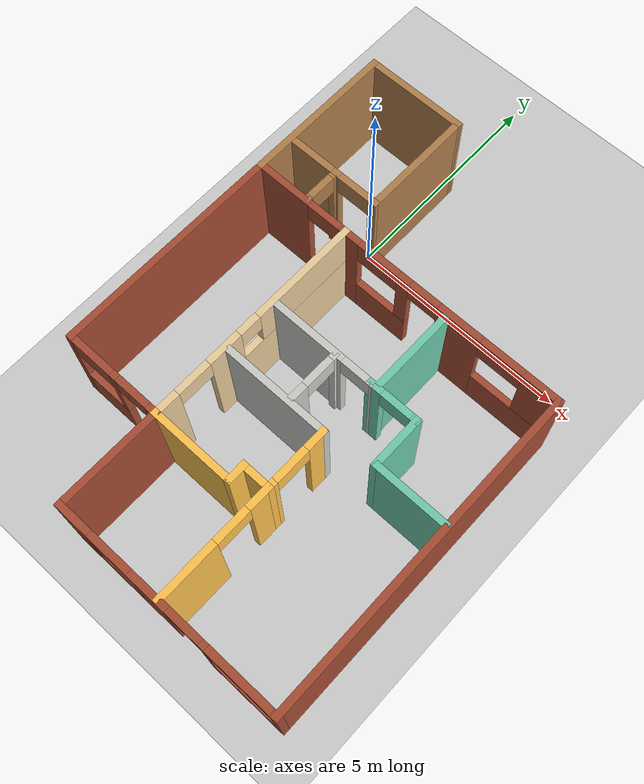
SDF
<sdf version="1.7">
 <world name="default">
  <model name="ground_plane">
   <static>1</static>
   <link name="link">
    <collision name="collision">
     <geometry><plane><normal>0 0 1</normal><size>100 100</size></plane></geometry>
     <surface>
      <contact><collide_bitmask>65535</collide_bitmask></contact>
      <friction><ode><mu>100</mu><mu2>50</mu2></ode></friction>
     </surface>
    </collision>
    <visual name="visual">
     <cast_shadows>0</cast_shadows>
     <geometry><plane><normal>0 0 1</normal><size>100 100</size></plane></geometry>
     <material>
      <script><uri>file://media/materials/scripts/gazebo.material</uri><name>Gazebo/Grey</name></script>
     </material>
    </visual>
   </link>
  </model>
  <model name="Building">
   <pose>1.6411 -2.93 0 0 -0 0</pose>
   <link name="Wall_101">
    <collision name="Wall_101_Collision">
     <geometry><box><size>3.5 0.15 2.5</size></box></geometry>
     <pose>0 0 1.25 0 -0 0</pose>
    </collision>
    <visual name="Wall_101_Visual">
     <pose>0 0 1.25 0 -0 0</pose>
     <geometry><box><size>3.5 0.15 2.5</size></box></geometry>
     <material>
      <script><uri>file://media/materials/scripts/gazebo.material</uri><name>Gazebo/Wood</name></script>
      <ambient>1 1 1 1</ambient>
     </material>
     <meta><layer>0</layer></meta>
    </visual>
    <pose>-3.72481 3.67494 0 0 -0 1.5708</pose>
   </link>
   <link name="Wall_107">
    <collision name="Wall_107_Collision">
     <geometry><box><size>2.39871 0.15 2.5</size></box></geometry>
     <pose>0 0 1.25 0 -0 0</pose>
    </collision>
    <visual name="Wall_107_Visual">
     <pose>0 0 1.25 0 -0 0</pose>
     <geometry><box><size>2.39871 0.15 2.5</size></box></geometry>
     <material>
      <script><uri>file://media/materials/scripts/gazebo.material</uri><name>Gazebo/Wood</name></script>
      <ambient>1 1 1 1</ambient>
     </material>
     <meta><layer>0</layer></meta>
    </visual>
    <pose>-2.60045 5.34997 0 0 -0 2.5e-05</pose>
   </link>
   <link name="Wall_109">
    <pose>-2.5181 2.433 0 0 -0 1.5708</pose>
    <visual name="Wall_109_Visual_0">
     <pose>-0.406862 0 1.25 0 -0 0</pose>
     <geometry><box><size>0.186276 0.15 2.5</size></box></geometry>
     <material>
      <script><uri>file://media/materials/scripts/gazebo.material</uri><name>Gazebo/Wood</name></script>
      <ambient>1 1 1 1</ambient>
     </material>
     <meta><layer>0</layer></meta>
    </visual>
    <collision name="Wall_109_Collision_0">
     <geometry><box><size>0.186276 0.15 2.5</size></box></geometry>
     <pose>-0.406862 0 1.25 0 -0 0</pose>
    </collision>
    <visual name="Wall_109_Visual_1">
     <pose>0.393138 0 1.25 0 -0 0</pose>
     <geometry><box><size>0.213724 0.15 2.5</size></box></geometry>
     <material>
      <script><uri>file://media/materials/scripts/gazebo.material</uri><name>Gazebo/Wood</name></script>
      <ambient>1 1 1 1</ambient>
     </material>
     <meta><layer>0</layer></meta>
    </visual>
    <collision name="Wall_109_Collision_1">
     <geometry><box><size>0.213724 0.15 2.5</size></box></geometry>
     <pose>0.393138 0 1.25 0 -0 0</pose>
    </collision>
    <visual name="Wall_109_Visual_2">
     <pose>-0.013724 0 2.25 0 -0 0</pose>
     <geometry><box><size>0.6 0.15 0.5</size></box></geometry>
     <material>
      <script><uri>file://media/materials/scripts/gazebo.material</uri><name>Gazebo/Wood</name></script>
      <ambient>1 1 1 1</ambient>
     </material>
     <meta><layer>0</layer></meta>
    </visual>
    <collision name="Wall_109_Collision_2">
     <geometry><box><size>0.6 0.15 0.5</size></box></geometry>
     <pose>-0.013724 0 2.25 0 -0 0</pose>
    </collision>
   </link>
   <link name="Wall_111">
    <collision name="Wall_111_Collision">
     <geometry><box><size>1.2505 0.15 2.5</size></box></geometry>
     <pose>0 0 1.25 0 -0 0</pose>
    </collision>
    <visual name="Wall_111_Visual">
     <pose>0 0 1.25 0 -0 0</pose>
     <geometry><box><size>1.2505 0.15 2.5</size></box></geometry>
     <material>
      <script><uri>file://media/materials/scripts/gazebo.material</uri><name>Gazebo/Wood</name></script>
      <ambient>1 1 1 1</ambient>
     </material>
     <meta><layer>0</layer></meta>
    </visual>
    <pose>-3.06835 2.85789 0 0 0 -3.14139</pose>
   </link>
   <link name="Wall_113">
    <pose>-1.9981 2.858 0 0 -0 0</pose>
    <visual name="Wall_113_Visual_0">
     <pose>-0.4985 0 1.25 0 -0 0</pose>
     <geometry><box><size>0.193 0.15 2.5</size></box></geometry>
     <material>
      <script><uri>file://media/materials/scripts/gazebo.material</uri><name>Gazebo/Wood</name></script>
      <ambient>1 1 1 1</ambient>
     </material>
     <meta><layer>0</layer></meta>
    </visual>
    <collision name="Wall_113_Collision_0">
     <geometry><box><size>0.193 0.15 2.5</size></box></geometry>
     <pose>-0.4985 0 1.25 0 -0 0</pose>
    </collision>
    <visual name="Wall_113_Visual_1">
     <pose>0.4965 0 1.25 0 -0 0</pose>
     <geometry><box><size>0.197 0.15 2.5</size></box></geometry>
     <material>
      <script><uri>file://media/materials/scripts/gazebo.material</uri><name>Gazebo/Wood</name></script>
      <ambient>1 1 1 1</ambient>
     </material>
     <meta><layer>0</layer></meta>
    </visual>
    <collision name="Wall_113_Collision_1">
     <geometry><box><size>0.197 0.15 2.5</size></box></geometry>
     <pose>0.4965 0 1.25 0 -0 0</pose>
    </collision>
    <visual name="Wall_113_Visual_2">
     <pose>-0.002 0 2.25 0 -0 0</pose>
     <geometry><box><size>0.8 0.15 0.5</size></box></geometry>
     <material>
      <script><uri>file://media/materials/scripts/gazebo.material</uri><name>Gazebo/Wood</name></script>
      <ambient>1 1 1 1</ambient>
     </material>
     <meta><layer>0</layer></meta>
    </visual>
    <collision name="Wall_113_Collision_2">
     <geometry><box><size>0.8 0.15 0.5</size></box></geometry>
     <pose>-0.002 0 2.25 0 -0 0</pose>
    </collision>
   </link>
   <link name="Wall_115">
    <collision name="Wall_115_Collision">
     <geometry><box><size>2.642 0.15 2.5</size></box></geometry>
     <pose>0 0 1.25 0 -0 0</pose>
    </collision>
    <visual name="Wall_115_Visual">
     <pose>0 0 1.25 0 -0 0</pose>
     <geometry><box><size>2.642 0.15 2.5</size></box></geometry>
     <material>
      <script><uri>file://media/materials/scripts/gazebo.material</uri><name>Gazebo/Wood</name></script>
      <ambient>1 1 1 1</ambient>
     </material>
     <meta><layer>0</layer></meta>
    </visual>
    <pose>-1.4771 4.104 0 0 -0 1.56999</pose>
   </link>
   <link name="Wall_25">
    <collision name="Wall_25_Collision">
     <geometry><box><size>5.2 0.15 2.5</size></box></geometry>
     <pose>0 0 1.25 0 -0 0</pose>
    </collision>
    <visual name="Wall_25_Visual">
     <pose>0 0 1.25 0 -0 0</pose>
     <geometry><box><size>5.2 0.15 2.5</size></box></geometry>
     <material>
      <script><uri>file://media/materials/scripts/gazebo.material</uri><name>Gazebo/Bricks</name></script>
      <ambient>1 1 1 1</ambient>
     </material>
     <meta><layer>0</layer></meta>
    </visual>
    <pose>-3.72495 -0.52503 0 0 0 -1.57085</pose>
   </link>
   <link name="Wall_27">
    <pose>-2.6006 -3.05 0 0 -0 0</pose>
    <visual name="Wall_27_Visual_0">
     <pose>-1.11544 0 1.25 0 -0 0</pose>
     <geometry><box><size>0.168303 0.15 2.5</size></box></geometry>
     <material>
      <script><uri>file://media/materials/scripts/gazebo.material</uri><name>Gazebo/Bricks</name></script>
      <ambient>0.760784 0.662745 0.627451 1</ambient>
     </material>
     <meta><layer>0</layer></meta>
    </visual>
    <collision name="Wall_27_Collision_0">
     <geometry><box><size>0.168303 0.15 2.5</size></box></geometry>
     <pose>-1.11544 0 1.25 0 -0 0</pose>
    </collision>
    <visual name="Wall_27_Visual_1">
     <pose>1.05915 0 1.25 0 -0 0</pose>
     <geometry><box><size>0.28088 0.15 2.5</size></box></geometry>
     <material>
      <script><uri>file://media/materials/scripts/gazebo.material</uri><name>Gazebo/Bricks</name></script>
      <ambient>0.760784 0.662745 0.627451 1</ambient>
     </material>
     <meta><layer>0</layer></meta>
    </visual>
    <collision name="Wall_27_Collision_1">
     <geometry><box><size>0.28088 0.15 2.5</size></box></geometry>
     <pose>1.05915 0 1.25 0 -0 0</pose>
    </collision>
    <visual name="Wall_27_Visual_2">
     <pose>-0.456289 0 0.45 0 -0 0</pose>
     <geometry><box><size>1.15 0.15 0.9</size></box></geometry>
     <material>
      <script><uri>file://media/materials/scripts/gazebo.material</uri><name>Gazebo/Bricks</name></script>
      <ambient>0.760784 0.662745 0.627451 1</ambient>
     </material>
     <meta><layer>0</layer></meta>
    </visual>
    <collision name="Wall_27_Collision_2">
     <geometry><box><size>1.15 0.15 0.9</size></box></geometry>
     <pose>-0.456289 0 0.45 0 -0 0</pose>
    </collision>
    <visual name="Wall_27_Visual_3">
     <pose>0.043711 0 1.7 0 -0 0</pose>
     <geometry><box><size>0.15 0.15 1.6</size></box></geometry>
     <material>
      <script><uri>file://media/materials/scripts/gazebo.material</uri><name>Gazebo/Bricks</name></script>
      <ambient>0.760784 0.662745 0.627451 1</ambient>
     </material>
     <meta><layer>0</layer></meta>
    </visual>
    <collision name="Wall_27_Collision_3">
     <geometry><box><size>0.15 0.15 1.6</size></box></geometry>
     <pose>0.043711 0 1.7 0 -0 0</pose>
    </collision>
    <visual name="Wall_27_Visual_4">
     <pose>-0.531289 0 2.2 0 -0 0</pose>
     <geometry><box><size>1 0.15 0.6</size></box></geometry>
     <material>
      <script><uri>file://media/materials/scripts/gazebo.material</uri><name>Gazebo/Bricks</name></script>
      <ambient>0.760784 0.662745 0.627451 1</ambient>
     </material>
     <meta><layer>0</layer></meta>
    </visual>
    <collision name="Wall_27_Collision_4">
     <geometry><box><size>1 0.15 0.6</size></box></geometry>
     <pose>-0.531289 0 2.2 0 -0 0</pose>
    </collision>
    <visual name="Wall_27_Visual_5">
     <pose>0.518711 0 2.25 0 -0 0</pose>
     <geometry><box><size>0.8 0.15 0.5</size></box></geometry>
     <material>
      <script><uri>file://media/materials/scripts/gazebo.material</uri><name>Gazebo/Bricks</name></script>
      <ambient>0.760784 0.662745 0.627451 1</ambient>
     </material>
     <meta><layer>0</layer></meta>
    </visual>
    <collision name="Wall_27_Collision_5">
     <geometry><box><size>0.8 0.15 0.5</size></box></geometry>
     <pose>0.518711 0 2.25 0 -0 0</pose>
    </collision>
   </link>
   <link name="Wall_29">
    <collision name="Wall_29_Collision">
     <geometry><box><size>2.30006 0.15 2.5</size></box></geometry>
     <pose>0 0 1.25 0 -0 0</pose>
    </collision>
    <visual name="Wall_29_Visual">
     <pose>0 0 1.25 0 -0 0</pose>
     <geometry><box><size>2.30006 0.15 2.5</size></box></geometry>
     <material>
      <script><uri>file://media/materials/scripts/gazebo.material</uri><name>Gazebo/Bricks</name></script>
      <ambient>1 1 1 1</ambient>
     </material>
     <meta><layer>0</layer></meta>
    </visual>
    <pose>-1.4761 -4.125 0 0 0 -1.5708</pose>
   </link>
   <link name="Wall_32">
    <collision name="Wall_32_Collision">
     <geometry><box><size>7.5 0.15 2.5</size></box></geometry>
     <pose>0 0 1.25 0 -0 0</pose>
    </collision>
    <visual name="Wall_32_Visual">
     <pose>0 0 1.25 0 -0 0</pose>
     <geometry><box><size>7.5 0.15 2.5</size></box></geometry>
     <material>
      <script><uri>file://media/materials/scripts/gazebo.material</uri><name>Gazebo/Bricks</name></script>
      <ambient>1 1 1 1</ambient>
     </material>
     <meta><layer>0</layer></meta>
    </visual>
    <pose>3.72519 -1.67506 0 0 0 -1.5708</pose>
   </link>
   <link name="Wall_34">
    <pose>1.12519 -5.35006 0 0 -0 3.14159</pose>
    <visual name="Wall_34_Visual_0">
     <pose>-2.58626 0 1.25 0 -0 0</pose>
     <geometry><box><size>0.177479 0.15 2.5</size></box></geometry>
     <material>
      <script><uri>file://media/materials/scripts/gazebo.material</uri><name>Gazebo/Bricks</name></script>
      <ambient>1 1 1 1</ambient>
     </material>
     <meta><layer>0</layer></meta>
    </visual>
    <collision name="Wall_34_Collision_0">
     <geometry><box><size>0.177479 0.15 2.5</size></box></geometry>
     <pose>-2.58626 0 1.25 0 -0 0</pose>
    </collision>
    <visual name="Wall_34_Visual_1">
     <pose>0.393157 0 1.25 0 -0 0</pose>
     <geometry><box><size>0.919189 0.15 2.5</size></box></geometry>
     <material>
      <script><uri>file://media/materials/scripts/gazebo.material</uri><name>Gazebo/Bricks</name></script>
      <ambient>1 1 1 1</ambient>
     </material>
     <meta><layer>0</layer></meta>
    </visual>
    <collision name="Wall_34_Collision_1">
     <geometry><box><size>0.919189 0.15 2.5</size></box></geometry>
     <pose>0.393157 0 1.25 0 -0 0</pose>
    </collision>
    <visual name="Wall_34_Visual_2">
     <pose>-1.68198 0 0.25 0 -0 0</pose>
     <geometry><box><size>1.63108 0.15 0.5</size></box></geometry>
     <material>
      <script><uri>file://media/materials/scripts/gazebo.material</uri><name>Gazebo/Bricks</name></script>
      <ambient>1 1 1 1</ambient>
     </material>
     <meta><layer>0</layer></meta>
    </visual>
    <collision name="Wall_34_Collision_2">
     <geometry><box><size>1.63108 0.15 0.5</size></box></geometry>
     <pose>-1.68198 0 0.25 0 -0 0</pose>
    </collision>
    <visual name="Wall_34_Visual_3">
     <pose>1.76388 0 0.45 0 -0 0</pose>
     <geometry><box><size>1.82225 0.15 0.9</size></box></geometry>
     <material>
      <script><uri>file://media/materials/scripts/gazebo.material</uri><name>Gazebo/Bricks</name></script>
      <ambient>1 1 1 1</ambient>
     </material>
     <meta><layer>0</layer></meta>
    </visual>
    <collision name="Wall_34_Collision_3">
     <geometry><box><size>1.82225 0.15 0.9</size></box></geometry>
     <pose>1.76388 0 0.45 0 -0 0</pose>
    </collision>
    <visual name="Wall_34_Visual_4">
     <pose>-0.931979 0 1.5 0 -0 0</pose>
     <geometry><box><size>0.131083 0.15 2</size></box></geometry>
     <material>
      <script><uri>file://media/materials/scripts/gazebo.material</uri><name>Gazebo/Bricks</name></script>
      <ambient>1 1 1 1</ambient>
     </material>
     <meta><layer>0</layer></meta>
    </visual>
    <collision name="Wall_34_Collision_4">
     <geometry><box><size>0.131083 0.15 2</size></box></geometry>
     <pose>-0.931979 0 1.5 0 -0 0</pose>
    </collision>
    <visual name="Wall_34_Visual_5">
     <pose>2.26388 0 1.7 0 -0 0</pose>
     <geometry><box><size>0.822249 0.15 1.6</size></box></geometry>
     <material>
      <script><uri>file://media/materials/scripts/gazebo.material</uri><name>Gazebo/Bricks</name></script>
      <ambient>1 1 1 1</ambient>
     </material>
     <meta><layer>0</layer></meta>
    </visual>
    <collision name="Wall_34_Collision_5">
     <geometry><box><size>0.822249 0.15 1.6</size></box></geometry>
     <pose>2.26388 0 1.7 0 -0 0</pose>
    </collision>
    <visual name="Wall_34_Visual_6">
     <pose>1.35275 0 2.2 0 -0 0</pose>
     <geometry><box><size>1 0.15 0.6</size></box></geometry>
     <material>
      <script><uri>file://media/materials/scripts/gazebo.material</uri><name>Gazebo/Bricks</name></script>
      <ambient>1 1 1 1</ambient>
     </material>
     <meta><layer>0</layer></meta>
    </visual>
    <collision name="Wall_34_Collision_6">
     <geometry><box><size>1 0.15 0.6</size></box></geometry>
     <pose>1.35275 0 2.2 0 -0 0</pose>
    </collision>
    <visual name="Wall_34_Visual_7">
     <pose>-1.74752 0 2.25 0 -0 0</pose>
     <geometry><box><size>1.5 0.15 0.5</size></box></geometry>
     <material>
      <script><uri>file://media/materials/scripts/gazebo.material</uri><name>Gazebo/Bricks</name></script>
      <ambient>1 1 1 1</ambient>
     </material>
     <meta><layer>0</layer></meta>
    </visual>
    <collision name="Wall_34_Collision_7">
     <geometry><box><size>1.5 0.15 0.5</size></box></geometry>
     <pose>-1.74752 0 2.25 0 -0 0</pose>
    </collision>
    <visual name="Wall_34_Visual_8">
     <pose>-0.466438 0 2.25 0 -0 0</pose>
     <geometry><box><size>0.8 0.15 0.5</size></box></geometry>
     <material>
      <script><uri>file://media/materials/scripts/gazebo.material</uri><name>Gazebo/Bricks</name></script>
      <ambient>1 1 1 1</ambient>
     </material>
     <meta><layer>0</layer></meta>
    </visual>
    <collision name="Wall_34_Collision_8">
     <geometry><box><size>0.8 0.15 0.5</size></box></geometry>
     <pose>-0.466438 0 2.25 0 -0 0</pose>
    </collision>
   </link>
   <link name="Wall_39">
    <pose>-1.4761 -0.525002 0 0 -0 1.5708</pose>
    <visual name="Wall_39_Visual_0">
     <pose>-2.29749 0 1.25 0 -0 0</pose>
     <geometry><box><size>0.604971 0.15 2.5</size></box></geometry>
     <material>
      <script><uri>file://media/materials/scripts/gazebo.material</uri><name>Gazebo/Grey</name></script>
      <ambient>0.921569 0.807843 0.615686 1</ambient>
     </material>
     <meta><layer>0</layer></meta>
    </visual>
    <collision name="Wall_39_Collision_0">
     <geometry><box><size>0.604971 0.15 2.5</size></box></geometry>
     <pose>-2.29749 0 1.25 0 -0 0</pose>
    </collision>
    <visual name="Wall_39_Visual_1">
     <pose>-0.798602 0 1.25 0 -0 0</pose>
     <geometry><box><size>0.792797 0.15 2.5</size></box></geometry>
     <material>
      <script><uri>file://media/materials/scripts/gazebo.material</uri><name>Gazebo/Grey</name></script>
      <ambient>0.921569 0.807843 0.615686 1</ambient>
     </material>
     <meta><layer>0</layer></meta>
    </visual>
    <collision name="Wall_39_Collision_1">
     <geometry><box><size>0.792797 0.15 2.5</size></box></geometry>
     <pose>-0.798602 0 1.25 0 -0 0</pose>
    </collision>
    <visual name="Wall_39_Visual_2">
     <pose>1.09888 0 0.75 0 -0 0</pose>
     <geometry><box><size>3.00217 0.15 1.5</size></box></geometry>
     <material>
      <script><uri>file://media/materials/scripts/gazebo.material</uri><name>Gazebo/Grey</name></script>
      <ambient>0.921569 0.807843 0.615686 1</ambient>
     </material>
     <meta><layer>0</layer></meta>
    </visual>
    <collision name="Wall_39_Collision_2">
     <geometry><box><size>3.00217 0.15 1.5</size></box></geometry>
     <pose>1.09888 0 0.75 0 -0 0</pose>
    </collision>
    <visual name="Wall_39_Visual_3">
     <pose>1.34888 0 2 0 -0 0</pose>
     <geometry><box><size>2.50217 0.15 1</size></box></geometry>
     <material>
      <script><uri>file://media/materials/scripts/gazebo.material</uri><name>Gazebo/Grey</name></script>
      <ambient>0.921569 0.807843 0.615686 1</ambient>
     </material>
     <meta><layer>0</layer></meta>
    </visual>
    <collision name="Wall_39_Collision_3">
     <geometry><box><size>2.50217 0.15 1</size></box></geometry>
     <pose>1.34888 0 2 0 -0 0</pose>
    </collision>
    <visual name="Wall_39_Visual_4">
     <pose>-1.595 0 2.25 0 -0 0</pose>
     <geometry><box><size>0.8 0.15 0.5</size></box></geometry>
     <material>
      <script><uri>file://media/materials/scripts/gazebo.material</uri><name>Gazebo/Grey</name></script>
      <ambient>0.921569 0.807843 0.615686 1</ambient>
     </material>
     <meta><layer>0</layer></meta>
    </visual>
    <collision name="Wall_39_Collision_4">
     <geometry><box><size>0.8 0.15 0.5</size></box></geometry>
     <pose>-1.595 0 2.25 0 -0 0</pose>
    </collision>
    <visual name="Wall_39_Visual_5">
     <pose>-0.152203 0 2.25 0 -0 0</pose>
     <geometry><box><size>0.5 0.15 0.5</size></box></geometry>
     <material>
      <script><uri>file://media/materials/scripts/gazebo.material</uri><name>Gazebo/Grey</name></script>
      <ambient>0.921569 0.807843 0.615686 1</ambient>
     </material>
     <meta><layer>0</layer></meta>
    </visual>
    <collision name="Wall_39_Collision_5">
     <geometry><box><size>0.5 0.15 0.5</size></box></geometry>
     <pose>-0.152203 0 2.25 0 -0 0</pose>
    </collision>
   </link>
   <link name="Wall_4">
    <pose>0.000193 1.99994 0 0 -0 0</pose>
    <visual name="Wall_4_Visual_0">
     <pose>-3.10005 0 1.25 0 -0 0</pose>
     <geometry><box><size>1.39989 0.15 2.5</size></box></geometry>
     <material>
      <script><uri>file://media/materials/scripts/gazebo.material</uri><name>Gazebo/Bricks</name></script>
      <ambient>1 1 1 1</ambient>
     </material>
     <meta><layer>0</layer></meta>
    </visual>
    <collision name="Wall_4_Collision_0">
     <geometry><box><size>1.39989 0.15 2.5</size></box></geometry>
     <pose>-3.10005 0 1.25 0 -0 0</pose>
    </collision>
    <visual name="Wall_4_Visual_1">
     <pose>-1.34947 0 1.25 0 -0 0</pose>
     <geometry><box><size>0.501265 0.15 2.5</size></box></geometry>
     <material>
      <script><uri>file://media/materials/scripts/gazebo.material</uri><name>Gazebo/Bricks</name></script>
      <ambient>1 1 1 1</ambient>
     </material>
     <meta><layer>0</layer></meta>
    </visual>
    <collision name="Wall_4_Collision_1">
     <geometry><box><size>0.501265 0.15 2.5</size></box></geometry>
     <pose>-1.34947 0 1.25 0 -0 0</pose>
    </collision>
    <visual name="Wall_4_Visual_2">
     <pose>1.40766 0 1.25 0 -0 0</pose>
     <geometry><box><size>1.036 0.15 2.5</size></box></geometry>
     <material>
      <script><uri>file://media/materials/scripts/gazebo.material</uri><name>Gazebo/Bricks</name></script>
      <ambient>1 1 1 1</ambient>
     </material>
     <meta><layer>0</layer></meta>
    </visual>
    <collision name="Wall_4_Collision_2">
     <geometry><box><size>1.036 0.15 2.5</size></box></geometry>
     <pose>1.40766 0 1.25 0 -0 0</pose>
    </collision>
    <visual name="Wall_4_Visual_3">
     <pose>-0.454591 0 0.45 0 -0 0</pose>
     <geometry><box><size>1.2885 0.15 0.9</size></box></geometry>
     <material>
      <script><uri>file://media/materials/scripts/gazebo.material</uri><name>Gazebo/Bricks</name></script>
      <ambient>1 1 1 1</ambient>
     </material>
     <meta><layer>0</layer></meta>
    </visual>
    <collision name="Wall_4_Collision_3">
     <geometry><box><size>1.2885 0.15 0.9</size></box></geometry>
     <pose>-0.454591 0 0.45 0 -0 0</pose>
    </collision>
    <visual name="Wall_4_Visual_4">
     <pose>2.86283 0 0.45 0 -0 0</pose>
     <geometry><box><size>1.87434 0.15 0.9</size></box></geometry>
     <material>
      <script><uri>file://media/materials/scripts/gazebo.material</uri><name>Gazebo/Bricks</name></script>
      <ambient>1 1 1 1</ambient>
     </material>
     <meta><layer>0</layer></meta>
    </visual>
    <collision name="Wall_4_Collision_4">
     <geometry><box><size>1.87434 0.15 0.9</size></box></geometry>
     <pose>2.86283 0 0.45 0 -0 0</pose>
    </collision>
    <visual name="Wall_4_Visual_5">
     <pose>0.045409 0 1.7 0 -0 0</pose>
     <geometry><box><size>0.2885 0.15 1.6</size></box></geometry>
     <material>
      <script><uri>file://media/materials/scripts/gazebo.material</uri><name>Gazebo/Bricks</name></script>
      <ambient>1 1 1 1</ambient>
     </material>
     <meta><layer>0</layer></meta>
    </visual>
    <collision name="Wall_4_Collision_5">
     <geometry><box><size>0.2885 0.15 1.6</size></box></geometry>
     <pose>0.045409 0 1.7 0 -0 0</pose>
    </collision>
    <visual name="Wall_4_Visual_6">
     <pose>0.045409 0 1.7 0 -0 0</pose>
     <geometry><box><size>0.2885 0.15 1.6</size></box></geometry>
     <material>
      <script><uri>file://media/materials/scripts/gazebo.material</uri><name>Gazebo/Bricks</name></script>
      <ambient>1 1 1 1</ambient>
     </material>
     <meta><layer>0</layer></meta>
    </visual>
    <collision name="Wall_4_Collision_6">
     <geometry><box><size>0.2885 0.15 1.6</size></box></geometry>
     <pose>0.045409 0 1.7 0 -0 0</pose>
    </collision>
    <visual name="Wall_4_Visual_7">
     <pose>3.36283 0 1.7 0 -0 0</pose>
     <geometry><box><size>0.874341 0.15 1.6</size></box></geometry>
     <material>
      <script><uri>file://media/materials/scripts/gazebo.material</uri><name>Gazebo/Bricks</name></script>
      <ambient>1 1 1 1</ambient>
     </material>
     <meta><layer>0</layer></meta>
    </visual>
    <collision name="Wall_4_Collision_7">
     <geometry><box><size>0.874341 0.15 1.6</size></box></geometry>
     <pose>3.36283 0 1.7 0 -0 0</pose>
    </collision>
    <visual name="Wall_4_Visual_8">
     <pose>-0.598841 0 2.2 0 -0 0</pose>
     <geometry><box><size>1 0.15 0.6</size></box></geometry>
     <material>
      <script><uri>file://media/materials/scripts/gazebo.material</uri><name>Gazebo/Bricks</name></script>
      <ambient>1 1 1 1</ambient>
     </material>
     <meta><layer>0</layer></meta>
    </visual>
    <collision name="Wall_4_Collision_8">
     <geometry><box><size>1 0.15 0.6</size></box></geometry>
     <pose>-0.598841 0 2.2 0 -0 0</pose>
    </collision>
    <visual name="Wall_4_Visual_9">
     <pose>2.42566 0 2.2 0 -0 0</pose>
     <geometry><box><size>1 0.15 0.6</size></box></geometry>
     <material>
      <script><uri>file://media/materials/scripts/gazebo.material</uri><name>Gazebo/Bricks</name></script>
      <ambient>1 1 1 1</ambient>
     </material>
     <meta><layer>0</layer></meta>
    </visual>
    <collision name="Wall_4_Collision_9">
     <geometry><box><size>1 0.15 0.6</size></box></geometry>
     <pose>2.42566 0 2.2 0 -0 0</pose>
    </collision>
    <visual name="Wall_4_Visual_10">
     <pose>-2.00011 0 2.25 0 -0 0</pose>
     <geometry><box><size>0.8 0.15 0.5</size></box></geometry>
     <material>
      <script><uri>file://media/materials/scripts/gazebo.material</uri><name>Gazebo/Bricks</name></script>
      <ambient>1 1 1 1</ambient>
     </material>
     <meta><layer>0</layer></meta>
    </visual>
    <collision name="Wall_4_Collision_10">
     <geometry><box><size>0.8 0.15 0.5</size></box></geometry>
     <pose>-2.00011 0 2.25 0 -0 0</pose>
    </collision>
    <visual name="Wall_4_Visual_11">
     <pose>0.539659 0 2.25 0 -0 0</pose>
     <geometry><box><size>0.7 0.15 0.5</size></box></geometry>
     <material>
      <script><uri>file://media/materials/scripts/gazebo.material</uri><name>Gazebo/Bricks</name></script>
      <ambient>1 1 1 1</ambient>
     </material>
     <meta><layer>0</layer></meta>
    </visual>
    <collision name="Wall_4_Collision_11">
     <geometry><box><size>0.7 0.15 0.5</size></box></geometry>
     <pose>0.539659 0 2.25 0 -0 0</pose>
    </collision>
    <visual name="Wall_4_Visual_12">
     <pose>0.539659 0 2.25 0 -0 0</pose>
     <geometry><box><size>0.7 0.15 0.5</size></box></geometry>
     <material>
      <script><uri>file://media/materials/scripts/gazebo.material</uri><name>Gazebo/Bricks</name></script>
      <ambient>1 1 1 1</ambient>
     </material>
     <meta><layer>0</layer></meta>
    </visual>
    <collision name="Wall_4_Collision_12">
     <geometry><box><size>0.7 0.15 0.5</size></box></geometry>
     <pose>0.539659 0 2.25 0 -0 0</pose>
    </collision>
   </link>
   <link name="Wall_41">
    <collision name="Wall_41_Collision">
     <geometry><box><size>2.00086 0.15 2.5</size></box></geometry>
     <pose>0 0 1.25 0 -0 0</pose>
    </collision>
    <visual name="Wall_41_Visual">
     <pose>0 0 1.25 0 -0 0</pose>
     <geometry><box><size>2.00086 0.15 2.5</size></box></geometry>
     <material>
      <script><uri>file://media/materials/scripts/gazebo.material</uri><name>Gazebo/Grey</name></script>
      <ambient>1 0.764706 0.305882 1</ambient>
     </material>
     <meta><layer>0</layer></meta>
    </visual>
    <pose>-0.550454 -3.05003 0 0 0 -3.1e-05</pose>
   </link>
   <link name="Wall_43">
    <collision name="Wall_43_Collision">
     <geometry><box><size>0.513225 0.15 2.5</size></box></geometry>
     <pose>0 0 1.25 0 -0 0</pose>
    </collision>
    <visual name="Wall_43_Visual">
     <pose>0 0 1.25 0 -0 0</pose>
     <geometry><box><size>0.513225 0.15 2.5</size></box></geometry>
     <material>
      <script><uri>file://media/materials/scripts/gazebo.material</uri><name>Gazebo/Grey</name></script>
      <ambient>1 0.764706 0.305882 1</ambient>
     </material>
     <meta><layer>0</layer></meta>
    </visual>
    <pose>0.375193 -2.86845 0 0 -0 1.5708</pose>
   </link>
   <link name="Wall_45">
    <collision name="Wall_45_Collision">
     <geometry><box><size>0.75 0.15 2.5</size></box></geometry>
     <pose>0 0 1.25 0 -0 0</pose>
    </collision>
    <visual name="Wall_45_Visual">
     <pose>0 0 1.25 0 -0 0</pose>
     <geometry><box><size>0.75 0.15 2.5</size></box></geometry>
     <material>
      <script><uri>file://media/materials/scripts/gazebo.material</uri><name>Gazebo/Grey</name></script>
      <ambient>1 0.764706 0.305882 1</ambient>
     </material>
     <meta><layer>0</layer></meta>
    </visual>
    <pose>0.675046 -2.68692 0 0 0 -0.000281</pose>
   </link>
   <link name="Wall_50">
    <pose>0.975046 -4.01192 0 0 0 -1.57069</pose>
    <visual name="Wall_50_Visual_0">
     <pose>-1.10695 0 1.25 0 -0 0</pose>
     <geometry><box><size>0.586109 0.15 2.5</size></box></geometry>
     <material>
      <script><uri>file://media/materials/scripts/gazebo.material</uri><name>Gazebo/Grey</name></script>
      <ambient>1 0.764706 0.305882 1</ambient>
     </material>
     <meta><layer>0</layer></meta>
    </visual>
    <collision name="Wall_50_Collision_0">
     <geometry><box><size>0.586109 0.15 2.5</size></box></geometry>
     <pose>-1.10695 0 1.25 0 -0 0</pose>
    </collision>
    <visual name="Wall_50_Visual_1">
     <pose>0.693055 0 1.25 0 -0 0</pose>
     <geometry><box><size>1.41389 0.15 2.5</size></box></geometry>
     <material>
      <script><uri>file://media/materials/scripts/gazebo.material</uri><name>Gazebo/Grey</name></script>
      <ambient>1 0.764706 0.305882 1</ambient>
     </material>
     <meta><layer>0</layer></meta>
    </visual>
    <collision name="Wall_50_Collision_1">
     <geometry><box><size>1.41389 0.15 2.5</size></box></geometry>
     <pose>0.693055 0 1.25 0 -0 0</pose>
    </collision>
    <visual name="Wall_50_Visual_2">
     <pose>-0.413891 0 2.25 0 -0 0</pose>
     <geometry><box><size>0.8 0.15 0.5</size></box></geometry>
     <material>
      <script><uri>file://media/materials/scripts/gazebo.material</uri><name>Gazebo/Grey</name></script>
      <ambient>1 0.764706 0.305882 1</ambient>
     </material>
     <meta><layer>0</layer></meta>
    </visual>
    <collision name="Wall_50_Collision_2">
     <geometry><box><size>0.8 0.15 0.5</size></box></geometry>
     <pose>-0.413891 0 2.25 0 -0 0</pose>
    </collision>
   </link>
   <link name="Wall_62">
    <pose>0.974898 -1.982 0 0 -0 1.5708</pose>
    <visual name="Wall_62_Visual_0">
     <pose>-0.658917 0 1.25 0 -0 0</pose>
     <geometry><box><size>0.241833 0.15 2.5</size></box></geometry>
     <material>
      <script><uri>file://media/materials/scripts/gazebo.material</uri><name>Gazebo/Grey</name></script>
      <ambient>1 0.764706 0.305882 1</ambient>
     </material>
     <meta><layer>0</layer></meta>
    </visual>
    <collision name="Wall_62_Collision_0">
     <geometry><box><size>0.241833 0.15 2.5</size></box></geometry>
     <pose>-0.658917 0 1.25 0 -0 0</pose>
    </collision>
    <visual name="Wall_62_Visual_1">
     <pose>0.520916 0 1.25 0 -0 0</pose>
     <geometry><box><size>0.517833 0.15 2.5</size></box></geometry>
     <material>
      <script><uri>file://media/materials/scripts/gazebo.material</uri><name>Gazebo/Grey</name></script>
      <ambient>1 0.764706 0.305882 1</ambient>
     </material>
     <meta><layer>0</layer></meta>
    </visual>
    <collision name="Wall_62_Collision_1">
     <geometry><box><size>0.517833 0.15 2.5</size></box></geometry>
     <pose>0.520916 0 1.25 0 -0 0</pose>
    </collision>
    <visual name="Wall_62_Visual_2">
     <pose>-0.138 0 2.25 0 -0 0</pose>
     <geometry><box><size>0.8 0.15 0.5</size></box></geometry>
     <material>
      <script><uri>file://media/materials/scripts/gazebo.material</uri><name>Gazebo/Grey</name></script>
      <ambient>1 0.764706 0.305882 1</ambient>
     </material>
     <meta><layer>0</layer></meta>
    </visual>
    <collision name="Wall_62_Collision_2">
     <geometry><box><size>0.8 0.15 0.5</size></box></geometry>
     <pose>-0.138 0 2.25 0 -0 0</pose>
    </collision>
   </link>
   <link name="Wall_64">
    <collision name="Wall_64_Collision">
     <geometry><box><size>2.5 0.15 2.5</size></box></geometry>
     <pose>0 0 1.25 0 -0 0</pose>
    </collision>
    <visual name="Wall_64_Visual">
     <pose>0 0 1.25 0 -0 0</pose>
     <geometry><box><size>2.5 0.15 2.5</size></box></geometry>
     <material>
      <script><uri>file://media/materials/scripts/gazebo.material</uri><name>Gazebo/CeilingTiled</name></script>
      <ambient>1 1 1 1</ambient>
     </material>
     <meta><layer>0</layer></meta>
    </visual>
    <pose>-0.200102 -1.277 0 0 -0 3.14159</pose>
   </link>
   <link name="Wall_77">
    <pose>-0.200102 -0.009552 0 0 -0 3.14159</pose>
    <visual name="Wall_77_Visual_0">
     <pose>-1.22093 0 1.25 0 -0 0</pose>
     <geometry><box><size>0.058144 0.15 2.5</size></box></geometry>
     <material>
      <script><uri>file://media/materials/scripts/gazebo.material</uri><name>Gazebo/CeilingTiled</name></script>
      <ambient>0.760784 0.662745 0.627451 1</ambient>
     </material>
     <meta><layer>0</layer></meta>
    </visual>
    <collision name="Wall_77_Collision_0">
     <geometry><box><size>0.058144 0.15 2.5</size></box></geometry>
     <pose>-1.22093 0 1.25 0 -0 0</pose>
    </collision>
    <visual name="Wall_77_Visual_1">
     <pose>0.379072 0 1.25 0 -0 0</pose>
     <geometry><box><size>1.74186 0.15 2.5</size></box></geometry>
     <material>
      <script><uri>file://media/materials/scripts/gazebo.material</uri><name>Gazebo/CeilingTiled</name></script>
      <ambient>0.760784 0.662745 0.627451 1</ambient>
     </material>
     <meta><layer>0</layer></meta>
    </visual>
    <collision name="Wall_77_Collision_1">
     <geometry><box><size>1.74186 0.15 2.5</size></box></geometry>
     <pose>0.379072 0 1.25 0 -0 0</pose>
    </collision>
    <visual name="Wall_77_Visual_2">
     <pose>-0.841856 0 2.25 0 -0 0</pose>
     <geometry><box><size>0.7 0.15 0.5</size></box></geometry>
     <material>
      <script><uri>file://media/materials/scripts/gazebo.material</uri><name>Gazebo/CeilingTiled</name></script>
      <ambient>0.760784 0.662745 0.627451 1</ambient>
     </material>
     <meta><layer>0</layer></meta>
    </visual>
    <collision name="Wall_77_Collision_2">
     <geometry><box><size>0.7 0.15 0.5</size></box></geometry>
     <pose>-0.841856 0 2.25 0 -0 0</pose>
    </collision>
   </link>
   <link name="Wall_86">
    <pose>0.125549 -0.61239 0 0 0 -1.5708</pose>
    <visual name="Wall_86_Visual_0">
     <pose>-0.544525 0 1.25 0 -0 0</pose>
     <geometry><box><size>0.160951 0.15 2.5</size></box></geometry>
     <material>
      <script><uri>file://media/materials/scripts/gazebo.material</uri><name>Gazebo/CeilingTiled</name></script>
      <ambient>1 1 1 1</ambient>
     </material>
     <meta><layer>0</layer></meta>
    </visual>
    <collision name="Wall_86_Collision_0">
     <geometry><box><size>0.160951 0.15 2.5</size></box></geometry>
     <pose>-0.544525 0 1.25 0 -0 0</pose>
    </collision>
    <visual name="Wall_86_Visual_1">
     <pose>0.430475 0 1.25 0 -0 0</pose>
     <geometry><box><size>0.389049 0.15 2.5</size></box></geometry>
     <material>
      <script><uri>file://media/materials/scripts/gazebo.material</uri><name>Gazebo/CeilingTiled</name></script>
      <ambient>1 1 1 1</ambient>
     </material>
     <meta><layer>0</layer></meta>
    </visual>
    <collision name="Wall_86_Collision_1">
     <geometry><box><size>0.389049 0.15 2.5</size></box></geometry>
     <pose>0.430475 0 1.25 0 -0 0</pose>
    </collision>
    <visual name="Wall_86_Visual_2">
     <pose>-0.114049 0 2.25 0 -0 0</pose>
     <geometry><box><size>0.7 0.15 0.5</size></box></geometry>
     <material>
      <script><uri>file://media/materials/scripts/gazebo.material</uri><name>Gazebo/CeilingTiled</name></script>
      <ambient>1 1 1 1</ambient>
     </material>
     <meta><layer>0</layer></meta>
    </visual>
    <collision name="Wall_86_Collision_2">
     <geometry><box><size>0.7 0.15 0.5</size></box></geometry>
     <pose>-0.114049 0 2.25 0 -0 0</pose>
    </collision>
   </link>
   <link name="Wall_88">
    <collision name="Wall_88_Collision">
     <geometry><box><size>2 0.15 2.5</size></box></geometry>
     <pose>0 0 1.25 0 -0 0</pose>
    </collision>
    <visual name="Wall_88_Visual">
     <pose>0 0 1.25 0 -0 0</pose>
     <geometry><box><size>2 0.15 2.5</size></box></geometry>
     <material>
      <script><uri>file://media/materials/scripts/gazebo.material</uri><name>Gazebo/Grey</name></script>
      <ambient>0.435294 0.796078 0.67451 1</ambient>
     </material>
     <meta><layer>0</layer></meta>
    </visual>
    <pose>1.12098 1.02898 0 0 0 -1.5708</pose>
   </link>
   <link name="Wall_94">
    <pose>1.5249 -0.009552 0 0 -0 0</pose>
    <visual name="Wall_94_Visual_0">
     <pose>-0.445797 0 1.25 0 -0 0</pose>
     <geometry><box><size>0.358405 0.15 2.5</size></box></geometry>
     <material>
      <script><uri>file://media/materials/scripts/gazebo.material</uri><name>Gazebo/Grey</name></script>
      <ambient>0.435294 0.796078 0.67451 1</ambient>
     </material>
     <meta><layer>0</layer></meta>
    </visual>
    <collision name="Wall_94_Collision_0">
     <geometry><box><size>0.358405 0.15 2.5</size></box></geometry>
     <pose>-0.445797 0 1.25 0 -0 0</pose>
    </collision>
    <visual name="Wall_94_Visual_1">
     <pose>0.529203 0 1.25 0 -0 0</pose>
     <geometry><box><size>0.191595 0.15 2.5</size></box></geometry>
     <material>
      <script><uri>file://media/materials/scripts/gazebo.material</uri><name>Gazebo/Grey</name></script>
      <ambient>0.435294 0.796078 0.67451 1</ambient>
     </material>
     <meta><layer>0</layer></meta>
    </visual>
    <collision name="Wall_94_Collision_1">
     <geometry><box><size>0.191595 0.15 2.5</size></box></geometry>
     <pose>0.529203 0 1.25 0 -0 0</pose>
    </collision>
    <visual name="Wall_94_Visual_2">
     <pose>0.083405 0 2.25 0 -0 0</pose>
     <geometry><box><size>0.7 0.15 0.5</size></box></geometry>
     <material>
      <script><uri>file://media/materials/scripts/gazebo.material</uri><name>Gazebo/Grey</name></script>
      <ambient>0.435294 0.796078 0.67451 1</ambient>
     </material>
     <meta><layer>0</layer></meta>
    </visual>
    <collision name="Wall_94_Collision_2">
     <geometry><box><size>0.7 0.15 0.5</size></box></geometry>
     <pose>0.083405 0 2.25 0 -0 0</pose>
    </collision>
   </link>
   <link name="Wall_95">
    <collision name="Wall_95_Collision">
     <geometry><box><size>1.25 0.15 2.5</size></box></geometry>
     <pose>0 0 1.25 0 -0 0</pose>
    </collision>
    <visual name="Wall_95_Visual">
     <pose>0 0 1.25 0 -0 0</pose>
     <geometry><box><size>1.25 0.15 2.5</size></box></geometry>
     <material>
      <script><uri>file://media/materials/scripts/gazebo.material</uri><name>Gazebo/Grey</name></script>
      <ambient>0.435294 0.796078 0.67451 1</ambient>
     </material>
     <meta><layer>0</layer></meta>
    </visual>
    <pose>2.0749 -0.559552 0 0 0 -1.5708</pose>
   </link>
   <link name="Wall_96">
    <collision name="Wall_96_Collision">
     <geometry><box><size>1.75 0.15 2.5</size></box></geometry>
     <pose>0 0 1.25 0 -0 0</pose>
    </collision>
    <visual name="Wall_96_Visual">
     <pose>0 0 1.25 0 -0 0</pose>
     <geometry><box><size>1.75 0.15 2.5</size></box></geometry>
     <material>
      <script><uri>file://media/materials/scripts/gazebo.material</uri><name>Gazebo/Grey</name></script>
      <ambient>0.435294 0.796078 0.67451 1</ambient>
     </material>
     <meta><layer>0</layer></meta>
    </visual>
    <pose>2.8749 -1.10955 0 0 -0 0</pose>
   </link>
   <static>1</static>
  </model>
  <model name="my_ball">
   <link name="link_0">
    <inertial>
     <mass>1</mass>
     <inertia><ixx>0.1</ixx><ixy>0</ixy><ixz>0</ixz><iyy>0.1</iyy><iyz>0</iyz><izz>0.1</izz></inertia>
    </inertial>
    <visual name="visual">
     <geometry><sphere><radius>0.1</radius></sphere></geometry>
     <material>
      <lighting>1</lighting>
      <script><uri>file://media/materials/scripts/gazebo.material</uri><name>Gazebo/Grey</name></script>
      <shader type="pixel"><normal_map>__default__</normal_map></shader>
      <ambient>1 1 1 1</ambient>
      <diffuse>1 1 1 1</diffuse>
      <specular>1 1 1 1</specular>
      <emissive>1 1 1 1</emissive>
     </material>
    </visual>
    <collision name="collision">
     <geometry><sphere><radius>0.1</radius></sphere></geometry>
     <surface>
      <friction>
       <ode><mu>1</mu><mu2>1</mu2><fdir1>0 0 0</fdir1><slip1>0</slip1><slip2>0</slip2></ode>
       <torsional>
        <coefficient>1</coefficient>
        <patch_radius>0</patch_radius>
        <surface_radius>0</surface_radius>
        <use_patch_radius>1</use_patch_radius>
        <ode><slip>0</slip></ode>
       </torsional>
      </friction>
      <bounce><restitution_coefficient>0</restitution_coefficient><threshold>1e+06</threshold></bounce>
      <contact>
       <collide_without_contact>0</collide_without_contact>
       <collide_without_contact_bitmask>1</collide_without_contact_bitmask>
       <collide_bitmask>1</collide_bitmask>
       <ode>
        <soft_cfm>0</soft_cfm>
        <soft_erp>0.2</soft_erp>
        <kp>1e+13</kp>
        <kd>1</kd>
        <max_vel>0.01</max_vel>
        <min_depth>0</min_depth>
       </ode>
       <bullet>
        <split_impulse>1</split_impulse>
        <split_impulse_penetration_threshold>-0.01</split_impulse_penetration_threshold>
        <soft_cfm>0</soft_cfm>
        <soft_erp>0.2</soft_erp>
        <kp>1e+13</kp>
        <kd>1</kd>
       </bullet>
      </contact>
     </surface>
    </collision>
   </link>
   <static>0</static>
   <pose>-2.75125 -3.8843 0.1 0 -0 0</pose>
  </model>
 </world>
</sdf>
